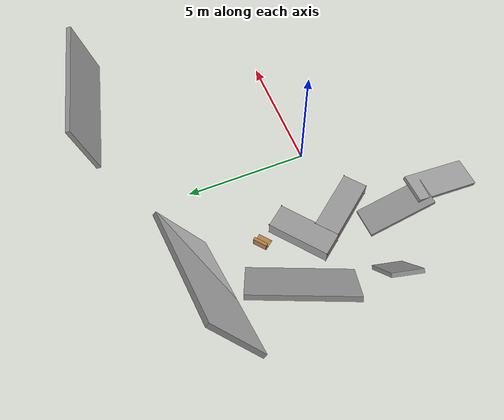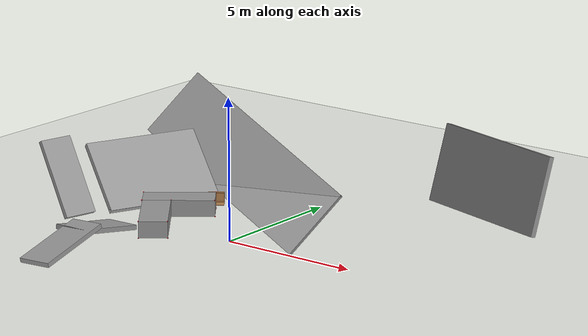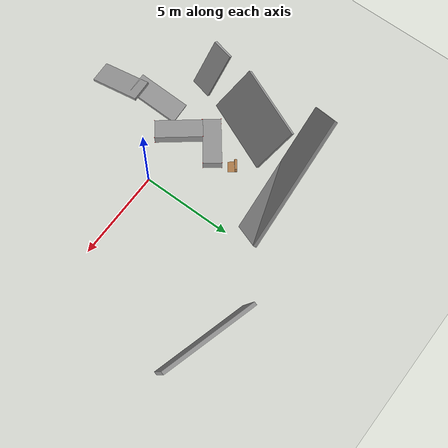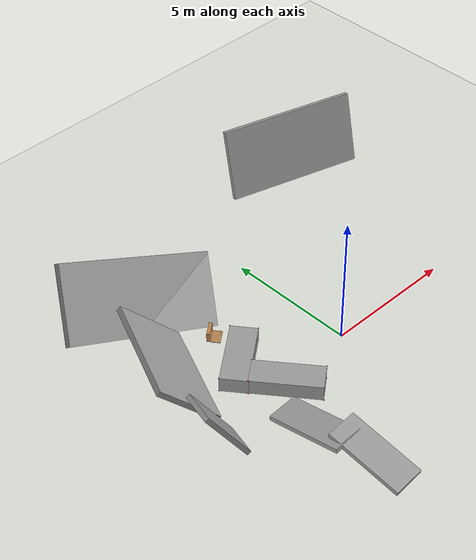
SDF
<sdf version="1.7">
 <world name="tracked_mid360_fastlio_collapse_microdeform_world">
  <model name="ground_plane">
   <static>1</static>
   <link name="link">
    <collision name="collision">
     <laser_retro>24</laser_retro>
     <geometry><plane><normal>0 0 1</normal><size>100 100</size></plane></geometry>
     <surface>
      <contact>
       <collide_bitmask>65535</collide_bitmask>
       <ode><kp>1e+06</kp><kd>10</kd><max_vel>0.05</max_vel><min_depth>0.001</min_depth></ode>
      </contact>
      <friction><ode><mu>2</mu><mu2>1.5</mu2></ode></friction>
     </surface>
     <max_contacts>20</max_contacts>
    </collision>
    <visual name="visual">
     <cast_shadows>0</cast_shadows>
     <geometry><plane><normal>0 0 1</normal><size>100 100</size></plane></geometry>
     <material>
      <script><uri>file://media/materials/scripts/gazebo.material</uri><name>Gazebo/Grey</name></script>
     </material>
    </visual>
   </link>
  </model>
  <model name="l_shape_target">
   <link name="link">
    <inertial>
     <pose>0 -2e-06 1e-06 0 -0 0</pose>
     <mass>2.9863</mass>
     <inertia>
      <ixx>3.26664</ixx>
      <ixy>-0.962303</ixy>
      <ixz>-0.00190897</ixz>
      <iyy>1.43022</iyy>
      <iyz>-0.00444381</iyz>
      <izz>4.52514</izz>
     </inertia>
    </inertial>
    <visual name="visual_0">
     <pose>-0.373105 -0.868439 -0.001713 0 -0 0</pose>
     <geometry><box><size>2.54222 1 0.58734</size></box></geometry>
     <material>
      <lighting>1</lighting>
      <script><uri>file://media/materials/scripts/gazebo.material</uri><name>Gazebo/Grey</name></script>
      <shader type="pixel"/>
     </material>
    </visual>
    <collision name="collision_0">
     <laser_retro>1</laser_retro>
     <pose>-0.373105 -0.868439 -0.001713 0 -0 0</pose>
     <geometry><box><size>2.54222 1 0.58734</size></box></geometry>
     <surface>
      <friction>
       <ode><mu>1</mu><mu2>1</mu2><fdir1>0 0 0</fdir1><slip1>0</slip1><slip2>0</slip2></ode>
       <torsional>
        <coefficient>1</coefficient>
        <patch_radius>0</patch_radius>
        <surface_radius>0</surface_radius>
        <use_patch_radius>1</use_patch_radius>
        <ode><slip>0</slip></ode>
       </torsional>
      </friction>
      <bounce><restitution_coefficient>0</restitution_coefficient><threshold>1e+06</threshold></bounce>
      <contact>
       <collide_without_contact>0</collide_without_contact>
       <collide_without_contact_bitmask>1</collide_without_contact_bitmask>
       <collide_bitmask>1</collide_bitmask>
       <ode>
        <soft_cfm>0</soft_cfm>
        <soft_erp>0.2</soft_erp>
        <kp>1e+13</kp>
        <kd>1</kd>
        <max_vel>0.01</max_vel>
        <min_depth>0</min_depth>
       </ode>
       <bullet>
        <split_impulse>1</split_impulse>
        <split_impulse_penetration_threshold>-0.01</split_impulse_penetration_threshold>
        <soft_cfm>0</soft_cfm>
        <soft_erp>0.2</soft_erp>
        <kp>1e+13</kp>
        <kd>1</kd>
       </bullet>
      </contact>
     </surface>
    </collision>
    <visual name="visual_1">
     <pose>0.373105 0.868436 0.001714 3.14159 0 -1.56298</pose>
     <geometry><box><size>2.54222 1 0.58734</size></box></geometry>
     <material>
      <lighting>1</lighting>
      <script><uri>file://media/materials/scripts/gazebo.material</uri><name>Gazebo/Grey</name></script>
      <shader type="pixel"/>
     </material>
    </visual>
    <collision name="collision_1">
     <laser_retro>1</laser_retro>
     <pose>0.373105 0.868436 0.001714 3.14159 0 -1.56298</pose>
     <geometry><box><size>2.54222 1 0.58734</size></box></geometry>
     <surface>
      <friction>
       <ode><mu>1</mu><mu2>1</mu2><fdir1>0 0 0</fdir1><slip1>0</slip1><slip2>0</slip2></ode>
       <torsional>
        <coefficient>1</coefficient>
        <patch_radius>0</patch_radius>
        <surface_radius>0</surface_radius>
        <use_patch_radius>1</use_patch_radius>
        <ode><slip>0</slip></ode>
       </torsional>
      </friction>
      <bounce><restitution_coefficient>0</restitution_coefficient><threshold>1e+06</threshold></bounce>
      <contact>
       <collide_without_contact>0</collide_without_contact>
       <collide_without_contact_bitmask>1</collide_without_contact_bitmask>
       <collide_bitmask>1</collide_bitmask>
       <ode>
        <soft_cfm>0</soft_cfm>
        <soft_erp>0.2</soft_erp>
        <kp>1e+13</kp>
        <kd>1</kd>
        <max_vel>0.01</max_vel>
        <min_depth>0</min_depth>
       </ode>
       <bullet>
        <split_impulse>1</split_impulse>
        <split_impulse_penetration_threshold>-0.01</split_impulse_penetration_threshold>
        <soft_cfm>0</soft_cfm>
        <soft_erp>0.2</soft_erp>
        <kp>1e+13</kp>
        <kd>1</kd>
       </bullet>
      </contact>
     </surface>
    </collision>
    <visual name="ground_truth_marker_v_000">
     <pose>-1.64421 -1.36844 -0.295383 0 -0 0</pose>
     <geometry><sphere><radius>0.02</radius></sphere></geometry>
     <material><ambient>1 0 0 1</ambient><diffuse>1 0 0 1</diffuse><emissive>1 0 0 1</emissive></material>
     <cast_shadows>0</cast_shadows>
    </visual>
    <visual name="ground_truth_marker_v_001">
     <pose>-1.64421 -1.36844 0.291957 0 -0 0</pose>
     <geometry><sphere><radius>0.02</radius></sphere></geometry>
     <material><ambient>1 0 0 1</ambient><diffuse>1 0 0 1</diffuse><emissive>1 0 0 1</emissive></material>
     <cast_shadows>0</cast_shadows>
    </visual>
    <visual name="ground_truth_marker_v_002">
     <pose>-1.64421 -0.368439 -0.295383 0 -0 0</pose>
     <geometry><sphere><radius>0.02</radius></sphere></geometry>
     <material><ambient>1 0 0 1</ambient><diffuse>1 0 0 1</diffuse><emissive>1 0 0 1</emissive></material>
     <cast_shadows>0</cast_shadows>
    </visual>
    <visual name="ground_truth_marker_v_003">
     <pose>-1.64421 -0.368439 0.291957 0 -0 0</pose>
     <geometry><sphere><radius>0.02</radius></sphere></geometry>
     <material><ambient>1 0 0 1</ambient><diffuse>1 0 0 1</diffuse><emissive>1 0 0 1</emissive></material>
     <cast_shadows>0</cast_shadows>
    </visual>
    <visual name="ground_truth_marker_v_004">
     <pose>0.898005 -1.36844 -0.295383 0 -0 0</pose>
     <geometry><sphere><radius>0.02</radius></sphere></geometry>
     <material><ambient>1 0 0 1</ambient><diffuse>1 0 0 1</diffuse><emissive>1 0 0 1</emissive></material>
     <cast_shadows>0</cast_shadows>
    </visual>
    <visual name="ground_truth_marker_v_005">
     <pose>0.898005 -1.36844 0.291957 0 -0 0</pose>
     <geometry><sphere><radius>0.02</radius></sphere></geometry>
     <material><ambient>1 0 0 1</ambient><diffuse>1 0 0 1</diffuse><emissive>1 0 0 1</emissive></material>
     <cast_shadows>0</cast_shadows>
    </visual>
    <visual name="ground_truth_marker_v_006">
     <pose>0.898005 -0.368439 -0.295383 0 -0 0</pose>
     <geometry><sphere><radius>0.02</radius></sphere></geometry>
     <material><ambient>1 0 0 1</ambient><diffuse>1 0 0 1</diffuse><emissive>1 0 0 1</emissive></material>
     <cast_shadows>0</cast_shadows>
    </visual>
    <visual name="ground_truth_marker_v_007">
     <pose>0.898005 -0.368439 0.291957 0 -0 0</pose>
     <geometry><sphere><radius>0.02</radius></sphere></geometry>
     <material><ambient>1 0 0 1</ambient><diffuse>1 0 0 1</diffuse><emissive>1 0 0 1</emissive></material>
     <cast_shadows>0</cast_shadows>
    </visual>
    <visual name="ground_truth_marker_v_008">
     <pose>0.863155 2.14342 0.295383 0 -0 0</pose>
     <geometry><sphere><radius>0.02</radius></sphere></geometry>
     <material><ambient>1 0 0 1</ambient><diffuse>1 0 0 1</diffuse><emissive>1 0 0 1</emissive></material>
     <cast_shadows>0</cast_shadows>
    </visual>
    <visual name="ground_truth_marker_v_009">
     <pose>0.863154 2.14342 -0.291957 0 -0 0</pose>
     <geometry><sphere><radius>0.02</radius></sphere></geometry>
     <material><ambient>1 0 0 1</ambient><diffuse>1 0 0 1</diffuse><emissive>1 0 0 1</emissive></material>
     <cast_shadows>0</cast_shadows>
    </visual>
    <visual name="ground_truth_marker_v_010">
     <pose>-0.136814 2.1356 0.295385 0 -0 0</pose>
     <geometry><sphere><radius>0.02</radius></sphere></geometry>
     <material><ambient>1 0 0 1</ambient><diffuse>1 0 0 1</diffuse><emissive>1 0 0 1</emissive></material>
     <cast_shadows>0</cast_shadows>
    </visual>
    <visual name="ground_truth_marker_v_011">
     <pose>-0.136816 2.1356 -0.291955 0 -0 0</pose>
     <geometry><sphere><radius>0.02</radius></sphere></geometry>
     <material><ambient>1 0 0 1</ambient><diffuse>1 0 0 1</diffuse><emissive>1 0 0 1</emissive></material>
     <cast_shadows>0</cast_shadows>
    </visual>
    <visual name="ground_truth_marker_v_012">
     <pose>0.883026 -0.398727 0.295383 0 -0 0</pose>
     <geometry><sphere><radius>0.02</radius></sphere></geometry>
     <material><ambient>1 0 0 1</ambient><diffuse>1 0 0 1</diffuse><emissive>1 0 0 1</emissive></material>
     <cast_shadows>0</cast_shadows>
    </visual>
    <visual name="ground_truth_marker_v_013">
     <pose>0.883024 -0.398727 -0.291957 0 -0 0</pose>
     <geometry><sphere><radius>0.02</radius></sphere></geometry>
     <material><ambient>1 0 0 1</ambient><diffuse>1 0 0 1</diffuse><emissive>1 0 0 1</emissive></material>
     <cast_shadows>0</cast_shadows>
    </visual>
    <visual name="ground_truth_marker_v_014">
     <pose>-0.116944 -0.406543 0.295385 0 -0 0</pose>
     <geometry><sphere><radius>0.02</radius></sphere></geometry>
     <material><ambient>1 0 0 1</ambient><diffuse>1 0 0 1</diffuse><emissive>1 0 0 1</emissive></material>
     <cast_shadows>0</cast_shadows>
    </visual>
    <visual name="ground_truth_marker_v_015">
     <pose>-0.116945 -0.406543 -0.291955 0 -0 0</pose>
     <geometry><sphere><radius>0.02</radius></sphere></geometry>
     <material><ambient>1 0 0 1</ambient><diffuse>1 0 0 1</diffuse><emissive>1 0 0 1</emissive></material>
     <cast_shadows>0</cast_shadows>
    </visual>
    <kinematic>1</kinematic>
   </link>
   <link name="ground_truth_v_000">
    <pose>-1.64421 -1.36844 -0.295383 0 -0 0</pose>
    <inertial>
     <mass>1e-06</mass>
     <inertia><ixx>1e-12</ixx><ixy>0</ixy><ixz>0</ixz><iyy>1e-12</iyy><iyz>0</iyz><izz>1e-12</izz></inertia>
    </inertial>
   </link>
   <link name="ground_truth_v_001">
    <pose>-1.64421 -1.36844 0.291957 0 -0 0</pose>
    <inertial>
     <mass>1e-06</mass>
     <inertia><ixx>1e-12</ixx><ixy>0</ixy><ixz>0</ixz><iyy>1e-12</iyy><iyz>0</iyz><izz>1e-12</izz></inertia>
    </inertial>
   </link>
   <link name="ground_truth_v_002">
    <pose>-1.64421 -0.368439 -0.295383 0 -0 0</pose>
    <inertial>
     <mass>1e-06</mass>
     <inertia><ixx>1e-12</ixx><ixy>0</ixy><ixz>0</ixz><iyy>1e-12</iyy><iyz>0</iyz><izz>1e-12</izz></inertia>
    </inertial>
   </link>
   <link name="ground_truth_v_003">
    <pose>-1.64421 -0.368439 0.291957 0 -0 0</pose>
    <inertial>
     <mass>1e-06</mass>
     <inertia><ixx>1e-12</ixx><ixy>0</ixy><ixz>0</ixz><iyy>1e-12</iyy><iyz>0</iyz><izz>1e-12</izz></inertia>
    </inertial>
   </link>
   <link name="ground_truth_v_004">
    <pose>0.898005 -1.36844 -0.295383 0 -0 0</pose>
    <inertial>
     <mass>1e-06</mass>
     <inertia><ixx>1e-12</ixx><ixy>0</ixy><ixz>0</ixz><iyy>1e-12</iyy><iyz>0</iyz><izz>1e-12</izz></inertia>
    </inertial>
   </link>
   <link name="ground_truth_v_005">
    <pose>0.898005 -1.36844 0.291957 0 -0 0</pose>
    <inertial>
     <mass>1e-06</mass>
     <inertia><ixx>1e-12</ixx><ixy>0</ixy><ixz>0</ixz><iyy>1e-12</iyy><iyz>0</iyz><izz>1e-12</izz></inertia>
    </inertial>
   </link>
   <link name="ground_truth_v_006">
    <pose>0.898005 -0.368439 -0.295383 0 -0 0</pose>
    <inertial>
     <mass>1e-06</mass>
     <inertia><ixx>1e-12</ixx><ixy>0</ixy><ixz>0</ixz><iyy>1e-12</iyy><iyz>0</iyz><izz>1e-12</izz></inertia>
    </inertial>
   </link>
   <link name="ground_truth_v_007">
    <pose>0.898005 -0.368439 0.291957 0 -0 0</pose>
    <inertial>
     <mass>1e-06</mass>
     <inertia><ixx>1e-12</ixx><ixy>0</ixy><ixz>0</ixz><iyy>1e-12</iyy><iyz>0</iyz><izz>1e-12</izz></inertia>
    </inertial>
   </link>
   <link name="ground_truth_v_008">
    <pose>0.863155 2.14342 0.295383 0 -0 0</pose>
    <inertial>
     <mass>1e-06</mass>
     <inertia><ixx>1e-12</ixx><ixy>0</ixy><ixz>0</ixz><iyy>1e-12</iyy><iyz>0</iyz><izz>1e-12</izz></inertia>
    </inertial>
   </link>
   <link name="ground_truth_v_009">
    <pose>0.863154 2.14342 -0.291957 0 -0 0</pose>
    <inertial>
     <mass>1e-06</mass>
     <inertia><ixx>1e-12</ixx><ixy>0</ixy><ixz>0</ixz><iyy>1e-12</iyy><iyz>0</iyz><izz>1e-12</izz></inertia>
    </inertial>
   </link>
   <link name="ground_truth_v_010">
    <pose>-0.136814 2.1356 0.295385 0 -0 0</pose>
    <inertial>
     <mass>1e-06</mass>
     <inertia><ixx>1e-12</ixx><ixy>0</ixy><ixz>0</ixz><iyy>1e-12</iyy><iyz>0</iyz><izz>1e-12</izz></inertia>
    </inertial>
   </link>
   <link name="ground_truth_v_011">
    <pose>-0.136816 2.1356 -0.291955 0 -0 0</pose>
    <inertial>
     <mass>1e-06</mass>
     <inertia><ixx>1e-12</ixx><ixy>0</ixy><ixz>0</ixz><iyy>1e-12</iyy><iyz>0</iyz><izz>1e-12</izz></inertia>
    </inertial>
   </link>
   <link name="ground_truth_v_012">
    <pose>0.883026 -0.398727 0.295383 0 -0 0</pose>
    <inertial>
     <mass>1e-06</mass>
     <inertia><ixx>1e-12</ixx><ixy>0</ixy><ixz>0</ixz><iyy>1e-12</iyy><iyz>0</iyz><izz>1e-12</izz></inertia>
    </inertial>
   </link>
   <link name="ground_truth_v_013">
    <pose>0.883024 -0.398727 -0.291957 0 -0 0</pose>
    <inertial>
     <mass>1e-06</mass>
     <inertia><ixx>1e-12</ixx><ixy>0</ixy><ixz>0</ixz><iyy>1e-12</iyy><iyz>0</iyz><izz>1e-12</izz></inertia>
    </inertial>
   </link>
   <link name="ground_truth_v_014">
    <pose>-0.116944 -0.406543 0.295385 0 -0 0</pose>
    <inertial>
     <mass>1e-06</mass>
     <inertia><ixx>1e-12</ixx><ixy>0</ixy><ixz>0</ixz><iyy>1e-12</iyy><iyz>0</iyz><izz>1e-12</izz></inertia>
    </inertial>
   </link>
   <link name="ground_truth_v_015">
    <pose>-0.116945 -0.406543 -0.291955 0 -0 0</pose>
    <inertial>
     <mass>1e-06</mass>
     <inertia><ixx>1e-12</ixx><ixy>0</ixy><ixz>0</ixz><iyy>1e-12</iyy><iyz>0</iyz><izz>1e-12</izz></inertia>
    </inertial>
   </link>
   <joint name="ground_truth_v_000_fixed_joint" type="fixed">
    <parent>link</parent>
    <child>ground_truth_v_000</child>
   </joint>
   <joint name="ground_truth_v_001_fixed_joint" type="fixed">
    <parent>link</parent>
    <child>ground_truth_v_001</child>
   </joint>
   <joint name="ground_truth_v_002_fixed_joint" type="fixed">
    <parent>link</parent>
    <child>ground_truth_v_002</child>
   </joint>
   <joint name="ground_truth_v_003_fixed_joint" type="fixed">
    <parent>link</parent>
    <child>ground_truth_v_003</child>
   </joint>
   <joint name="ground_truth_v_004_fixed_joint" type="fixed">
    <parent>link</parent>
    <child>ground_truth_v_004</child>
   </joint>
   <joint name="ground_truth_v_005_fixed_joint" type="fixed">
    <parent>link</parent>
    <child>ground_truth_v_005</child>
   </joint>
   <joint name="ground_truth_v_006_fixed_joint" type="fixed">
    <parent>link</parent>
    <child>ground_truth_v_006</child>
   </joint>
   <joint name="ground_truth_v_007_fixed_joint" type="fixed">
    <parent>link</parent>
    <child>ground_truth_v_007</child>
   </joint>
   <joint name="ground_truth_v_008_fixed_joint" type="fixed">
    <parent>link</parent>
    <child>ground_truth_v_008</child>
   </joint>
   <joint name="ground_truth_v_009_fixed_joint" type="fixed">
    <parent>link</parent>
    <child>ground_truth_v_009</child>
   </joint>
   <joint name="ground_truth_v_010_fixed_joint" type="fixed">
    <parent>link</parent>
    <child>ground_truth_v_010</child>
   </joint>
   <joint name="ground_truth_v_011_fixed_joint" type="fixed">
    <parent>link</parent>
    <child>ground_truth_v_011</child>
   </joint>
   <joint name="ground_truth_v_012_fixed_joint" type="fixed">
    <parent>link</parent>
    <child>ground_truth_v_012</child>
   </joint>
   <joint name="ground_truth_v_013_fixed_joint" type="fixed">
    <parent>link</parent>
    <child>ground_truth_v_013</child>
   </joint>
   <joint name="ground_truth_v_014_fixed_joint" type="fixed">
    <parent>link</parent>
    <child>ground_truth_v_014</child>
   </joint>
   <joint name="ground_truth_v_015_fixed_joint" type="fixed">
    <parent>link</parent>
    <child>ground_truth_v_015</child>
   </joint>
   <static>0</static>
   <pose>-3.27675 0.570427 0.295379 0 0 -2.4823</pose>
  </model>
  <model name="lzg_grey_wall">
   <link name="link">
    <pose>7.32515 3.97328 2.49003 0 -0 0</pose>
    <inertial>
     <inertia><ixx>0.477607</ixx><ixy>0</ixy><ixz>0</ixz><iyy>2.2787</iyy><iyz>0</iyz><izz>1.80594</izz></inertia>
     <mass>0.727321</mass>
    </inertial>
    <visual name="visual">
     <cast_shadows>0</cast_shadows>
     <geometry><box><size>5.45491 0.2 2.8</size></box></geometry>
     <material>
      <script>
       <uri>model://grey_wall/materials/scripts</uri>
       <uri>model://grey_wall/materials/textures</uri>
       <name>vrc/grey_wall</name>
      </script>
      <shader type="pixel"/>
     </material>
    </visual>
    <collision name="collision">
     <laser_retro>12</laser_retro>
     <geometry><box><size>5.45491 0.2 2.8</size></box></geometry>
     <surface>
      <friction>
       <ode><mu>1</mu><mu2>1</mu2><fdir1>0 0 0</fdir1><slip1>0</slip1><slip2>0</slip2></ode>
       <torsional>
        <coefficient>1</coefficient>
        <patch_radius>0</patch_radius>
        <surface_radius>0</surface_radius>
        <use_patch_radius>1</use_patch_radius>
        <ode><slip>0</slip></ode>
       </torsional>
      </friction>
      <bounce><restitution_coefficient>0</restitution_coefficient><threshold>1e+06</threshold></bounce>
      <contact>
       <collide_without_contact>0</collide_without_contact>
       <collide_without_contact_bitmask>1</collide_without_contact_bitmask>
       <collide_bitmask>1</collide_bitmask>
       <ode>
        <soft_cfm>0</soft_cfm>
        <soft_erp>0.2</soft_erp>
        <kp>1e+13</kp>
        <kd>1</kd>
        <max_vel>0.01</max_vel>
        <min_depth>0</min_depth>
       </ode>
       <bullet>
        <split_impulse>1</split_impulse>
        <split_impulse_penetration_threshold>-0.01</split_impulse_penetration_threshold>
        <soft_cfm>0</soft_cfm>
        <soft_erp>0.2</soft_erp>
        <kp>1e+13</kp>
        <kd>1</kd>
       </bullet>
      </contact>
     </surface>
    </collision>
   </link>
   <static>1</static>
   <allow_auto_disable>0</allow_auto_disable>
   <pose>-2.92114 5.32308 0.059142 -0.275506 -0 -0.272159</pose>
  </model>
  <model name="wooden_case_metal_peg">
   <static>1</static>
   <frame name="wooden_case::__model__" attached_to="wooden_case::base">
    <pose relative_to="__model__">0 0 0 0 -0 0</pose>
   </frame>
   <link name="wooden_case::base">
    <pose relative_to="wooden_case::__model__">0 0 0.024 0 -0 0</pose>
    <inertial>
     <pose>-0.022184 0 0.171592 0 -0 0</pose>
     <mass>3.96264</mass>
     <inertia>
      <ixx>0.213536</ixx>
      <ixy>0</ixy>
      <ixz>0.000779377</ixz>
      <iyy>0.0708943</iyy>
      <iyz>0</iyz>
      <izz>0.154604</izz>
     </inertia>
    </inertial>
    <collision name="collision_back">
     <laser_retro>13</laser_retro>
     <pose>-0.053975 0 0.1778 0 -0 0</pose>
     <geometry><box><size>0.01905 0.5461 0.3175</size></box></geometry>
     <surface>
      <contact>
       <poissons_ratio>0.347</poissons_ratio>
       <elastic_modulus>8.8e+09</elastic_modulus>
       <ode><kp>100000</kp><kd>100</kd><max_vel>100</max_vel><min_depth>0.001</min_depth></ode>
      </contact>
      <friction>
       <torsional>
        <coefficient>1</coefficient>
        <use_patch_radius>0</use_patch_radius>
        <surface_radius>0.01</surface_radius>
       </torsional>
      </friction>
     </surface>
    </collision>
    <visual name="visual_back">
     <pose>-0.053975 0 0.1778 0 -0 0</pose>
     <geometry><box><size>0.01905 0.5461 0.3175</size></box></geometry>
     <material>
      <script><uri>file://media/materials/scripts/gazebo.material</uri><name>Gazebo/Wood</name></script>
     </material>
    </visual>
    <collision name="collision_bottom">
     <laser_retro>13</laser_retro>
     <pose>0 0 0.009525 0 -0 0</pose>
     <geometry><box><size>0.127 0.5842 0.01905</size></box></geometry>
     <surface>
      <contact>
       <poissons_ratio>0.347</poissons_ratio>
       <elastic_modulus>8.8e+09</elastic_modulus>
       <ode><kp>100000</kp><kd>100</kd><max_vel>100</max_vel><min_depth>0.001</min_depth></ode>
      </contact>
      <friction>
       <torsional>
        <coefficient>1</coefficient>
        <use_patch_radius>0</use_patch_radius>
        <surface_radius>0.01</surface_radius>
       </torsional>
      </friction>
     </surface>
    </collision>
    <visual name="visual_bottom">
     <pose>0 0 0.009525 0 -0 0</pose>
     <geometry><box><size>0.127 0.5842 0.01905</size></box></geometry>
     <material>
      <script><uri>file://media/materials/scripts/gazebo.material</uri><name>Gazebo/Wood</name></script>
     </material>
    </visual>
    <collision name="collision_top">
     <laser_retro>13</laser_retro>
     <pose>0 0 0.346075 0 -0 0</pose>
     <geometry><box><size>0.127 0.5842 0.01905</size></box></geometry>
     <surface>
      <contact>
       <poissons_ratio>0.347</poissons_ratio>
       <elastic_modulus>8.8e+09</elastic_modulus>
       <ode><kp>100000</kp><kd>100</kd><max_vel>100</max_vel><min_depth>0.001</min_depth></ode>
      </contact>
      <friction>
       <torsional>
        <coefficient>1</coefficient>
        <use_patch_radius>0</use_patch_radius>
        <surface_radius>0.01</surface_radius>
       </torsional>
      </friction>
     </surface>
    </collision>
    <visual name="visual_top">
     <pose>0 0 0.346075 0 -0 0</pose>
     <geometry><box><size>0.127 0.5842 0.01905</size></box></geometry>
     <material>
      <script><uri>file://media/materials/scripts/gazebo.material</uri><name>Gazebo/Wood</name></script>
     </material>
    </visual>
    <collision name="collision_left">
     <laser_retro>13</laser_retro>
     <pose>0 -0.282575 0.1778 0 -0 0</pose>
     <geometry><box><size>0.127 0.01905 0.3175</size></box></geometry>
     <surface>
      <contact>
       <poissons_ratio>0.347</poissons_ratio>
       <elastic_modulus>8.8e+09</elastic_modulus>
       <ode><kp>100000</kp><kd>100</kd><max_vel>100</max_vel><min_depth>0.001</min_depth></ode>
      </contact>
      <friction>
       <torsional>
        <coefficient>1</coefficient>
        <use_patch_radius>0</use_patch_radius>
        <surface_radius>0.01</surface_radius>
       </torsional>
      </friction>
     </surface>
    </collision>
    <visual name="visual_left">
     <pose>0 -0.282575 0.1778 0 -0 0</pose>
     <geometry><box><size>0.127 0.01905 0.3175</size></box></geometry>
     <material>
      <script><uri>file://media/materials/scripts/gazebo.material</uri><name>Gazebo/Wood</name></script>
     </material>
    </visual>
    <collision name="collision_right">
     <laser_retro>13</laser_retro>
     <pose>0 0.282575 0.1778 0 -0 0</pose>
     <geometry><box><size>0.127 0.01905 0.3175</size></box></geometry>
     <surface>
      <contact>
       <poissons_ratio>0.347</poissons_ratio>
       <elastic_modulus>8.8e+09</elastic_modulus>
       <ode><kp>100000</kp><kd>100</kd><max_vel>100</max_vel><min_depth>0.001</min_depth></ode>
      </contact>
      <friction>
       <torsional>
        <coefficient>1</coefficient>
        <use_patch_radius>0</use_patch_radius>
        <surface_radius>0.01</surface_radius>
       </torsional>
      </friction>
     </surface>
    </collision>
    <visual name="visual_right">
     <pose>0 0.282575 0.1778 0 -0 0</pose>
     <geometry><box><size>0.127 0.01905 0.3175</size></box></geometry>
     <material>
      <script><uri>file://media/materials/scripts/gazebo.material</uri><name>Gazebo/Wood</name></script>
     </material>
    </visual>
    <collision name="collision_block_left">
     <laser_retro>13</laser_retro>
     <pose>0.0095 -0.2151 -0.012 0 -0 0</pose>
     <geometry><box><size>0.108 0.05 0.024</size></box></geometry>
     <surface>
      <contact>
       <poissons_ratio>0.347</poissons_ratio>
       <elastic_modulus>8.8e+09</elastic_modulus>
       <ode><kp>100000</kp><kd>100</kd><max_vel>100</max_vel><min_depth>0.001</min_depth></ode>
      </contact>
      <friction>
       <torsional>
        <coefficient>1</coefficient>
        <use_patch_radius>0</use_patch_radius>
        <surface_radius>0.01</surface_radius>
       </torsional>
      </friction>
     </surface>
    </collision>
    <visual name="visual_block_left">
     <pose>0.0095 -0.2151 -0.012 0 -0 0</pose>
     <geometry><box><size>0.108 0.05 0.024</size></box></geometry>
     <material>
      <script><uri>file://media/materials/scripts/gazebo.material</uri><name>Gazebo/Wood</name></script>
     </material>
    </visual>
    <collision name="collision_block_right">
     <laser_retro>13</laser_retro>
     <pose>0.0095 0.2151 -0.012 0 -0 0</pose>
     <geometry><box><size>0.108 0.05 0.024</size></box></geometry>
     <surface>
      <contact>
       <poissons_ratio>0.347</poissons_ratio>
       <elastic_modulus>8.8e+09</elastic_modulus>
       <ode><kp>100000</kp><kd>100</kd><max_vel>100</max_vel><min_depth>0.001</min_depth></ode>
      </contact>
      <friction>
       <torsional>
        <coefficient>1</coefficient>
        <use_patch_radius>0</use_patch_radius>
        <surface_radius>0.01</surface_radius>
       </torsional>
      </friction>
     </surface>
    </collision>
    <visual name="visual_block_right">
     <pose>0.0095 0.2151 -0.012 0 -0 0</pose>
     <geometry><box><size>0.108 0.05 0.024</size></box></geometry>
     <material>
      <script><uri>file://media/materials/scripts/gazebo.material</uri><name>Gazebo/Wood</name></script>
     </material>
    </visual>
   </link>
   <link name="wooden_case::lid">
    <pose relative_to="wooden_case::__model__">0.243775 0 0.009525 0 -0 0</pose>
    <inertial>
     <mass>1.97874</mass>
     <inertia>
      <ixx>0.0563367</ixx>
      <ixy>0</ixy>
      <ixz>0</ixz>
      <iyy>0.020911</iyy>
      <iyz>0</iyz>
      <izz>0.0771281</izz>
     </inertia>
    </inertial>
    <collision name="collision">
     <laser_retro>13</laser_retro>
     <geometry><box><size>0.3556 0.5842 0.01905</size></box></geometry>
     <surface>
      <contact>
       <poissons_ratio>0.347</poissons_ratio>
       <elastic_modulus>8.8e+09</elastic_modulus>
       <ode><kp>100000</kp><kd>100</kd><max_vel>100</max_vel><min_depth>0.001</min_depth></ode>
      </contact>
      <friction>
       <torsional>
        <coefficient>1</coefficient>
        <use_patch_radius>0</use_patch_radius>
        <surface_radius>0.01</surface_radius>
       </torsional>
      </friction>
     </surface>
    </collision>
    <visual name="visual">
     <geometry><box><size>0.3556 0.5842 0.01905</size></box></geometry>
     <material>
      <script><uri>file://media/materials/scripts/gazebo.material</uri><name>Gazebo/Wood</name></script>
     </material>
    </visual>
    <visual name="tee_nut_1">
     <pose>0.122 -0.216 0 0 -0 0</pose>
     <geometry><cylinder><radius>0.00635</radius><length>0.0192405</length></cylinder></geometry>
     <material>
      <script><uri>file://media/materials/scripts/gazebo.material</uri><name>Gazebo/Grey</name></script>
     </material>
    </visual>
    <visual name="tee_nut_2">
     <pose>0.122 -0.088 0 0 -0 0</pose>
     <geometry><cylinder><radius>0.00635</radius><length>0.0192405</length></cylinder></geometry>
     <material>
      <script><uri>file://media/materials/scripts/gazebo.material</uri><name>Gazebo/Grey</name></script>
     </material>
    </visual>
    <visual name="tee_nut_3">
     <pose>0.122 0.088 0 0 -0 0</pose>
     <geometry><cylinder><radius>0.00635</radius><length>0.0192405</length></cylinder></geometry>
     <material>
      <script><uri>file://media/materials/scripts/gazebo.material</uri><name>Gazebo/Grey</name></script>
     </material>
    </visual>
    <visual name="tee_nut_4">
     <pose>0.122 0.216 0 0 -0 0</pose>
     <geometry><cylinder><radius>0.00635</radius><length>0.0192405</length></cylinder></geometry>
     <material>
      <script><uri>file://media/materials/scripts/gazebo.material</uri><name>Gazebo/Grey</name></script>
     </material>
    </visual>
   </link>
   <joint name="wooden_case::lid_hinge" type="revolute">
    <pose>-0.1778 0 0.01905 0 -0 0</pose>
    <parent>wooden_case::base</parent>
    <child>wooden_case::lid</child>
    <axis>
     <xyz>0 1 0</xyz>
     <limit><upper>0.523599</upper><lower>-1.5708</lower></limit>
     <dynamics><spring_reference>0</spring_reference><spring_stiffness>0</spring_stiffness></dynamics>
    </axis>
   </joint>
   <frame name="peg::__model__" attached_to="peg::link">
    <pose relative_to="__model__">0.365774 0.216 0.01905 0 -0 0</pose>
   </frame>
   <link name="peg::link">
    <pose relative_to="peg::__model__">0 0 0.031 0 -0 0</pose>
    <inertial>
     <mass>0.0121</mass>
     <inertia>
      <ixx>3.90898e-06</ixx>
      <ixy>0</ixy>
      <ixz>0</ixz>
      <iyy>3.90898e-06</iyy>
      <iyz>0</iyz>
      <izz>6.58845e-08</izz>
     </inertia>
    </inertial>
    <collision name="collision">
     <laser_retro>13</laser_retro>
     <geometry><cylinder><radius>0.0033</radius><length>0.062</length></cylinder></geometry>
     <surface>
      <contact>
       <poissons_ratio>0.305</poissons_ratio>
       <elastic_modulus>2e+11</elastic_modulus>
       <ode><kp>100000</kp><kd>100</kd><max_vel>100</max_vel><min_depth>0.001</min_depth></ode>
      </contact>
      <friction>
       <torsional>
        <coefficient>1</coefficient>
        <use_patch_radius>0</use_patch_radius>
        <surface_radius>0.01</surface_radius>
       </torsional>
      </friction>
     </surface>
    </collision>
    <visual name="visual">
     <geometry><cylinder><radius>0.0033</radius><length>0.062</length></cylinder></geometry>
     <material>
      <script><uri>file://media/materials/scripts/gazebo.material</uri><name>Gazebo/Grey</name></script>
     </material>
    </visual>
   </link>
   <joint name="case_peg" type="revolute">
    <child>peg::link</child>
    <parent>wooden_case::lid</parent>
    <axis>
     <xyz>0 0 1</xyz>
     <limit><upper>0</upper><lower>0</lower></limit>
     <dynamics><spring_reference>0</spring_reference><spring_stiffness>0</spring_stiffness></dynamics>
    </axis>
   </joint>
   <pose>-3.2677 3.21042 -0.001063 1.1e-05 -0.000531 -0.909382</pose>
  </model>
  <model name="lzg_bianwood_clone">
   <link name="link_0">
    <inertial>
     <mass>0.567947</mass>
     <inertia>
      <ixx>0.387852</ixx>
      <ixy>0</ixy>
      <ixz>0</ixz>
      <iyy>0.454669</iyy>
      <iyz>0</iyz>
      <izz>0.0694091</izz>
     </inertia>
    </inertial>
    <pose>0 -3e-06 -0 0.737123 -0 0</pose>
    <visual name="visual">
     <geometry><box><size>1.19964 0.165479 2.85787</size></box></geometry>
     <material>
      <lighting>1</lighting>
      <script><uri>file://media/materials/scripts/gazebo.material</uri><name>Gazebo/Grey</name></script>
      <shader type="pixel"/>
     </material>
    </visual>
    <collision name="collision">
     <laser_retro>19</laser_retro>
     <geometry><box><size>1.19964 0.165479 2.85787</size></box></geometry>
     <surface>
      <friction>
       <ode><mu>1</mu><mu2>1</mu2><fdir1>0 0 0</fdir1><slip1>0</slip1><slip2>0</slip2></ode>
       <torsional>
        <coefficient>1</coefficient>
        <patch_radius>0</patch_radius>
        <surface_radius>0</surface_radius>
        <use_patch_radius>1</use_patch_radius>
        <ode><slip>0</slip></ode>
       </torsional>
      </friction>
      <bounce><restitution_coefficient>0</restitution_coefficient><threshold>1e+06</threshold></bounce>
      <contact>
       <collide_without_contact>0</collide_without_contact>
       <collide_without_contact_bitmask>1</collide_without_contact_bitmask>
       <collide_bitmask>1</collide_bitmask>
       <ode>
        <soft_cfm>0</soft_cfm>
        <soft_erp>0.2</soft_erp>
        <kp>1e+13</kp>
        <kd>1</kd>
        <max_vel>0.01</max_vel>
        <min_depth>0</min_depth>
       </ode>
       <bullet>
        <split_impulse>1</split_impulse>
        <split_impulse_penetration_threshold>-0.01</split_impulse_penetration_threshold>
        <soft_cfm>0</soft_cfm>
        <soft_erp>0.2</soft_erp>
        <kp>1e+13</kp>
        <kd>1</kd>
       </bullet>
      </contact>
     </surface>
    </collision>
   </link>
   <static>1</static>
   <pose>-3.87066 -2.3799 0.35166 0.643287 -2e-06 0.051627</pose>
  </model>
  <model name="lzg_bianwood_clone_0">
   <link name="link_0">
    <inertial>
     <mass>0.567947</mass>
     <inertia>
      <ixx>0.387852</ixx>
      <ixy>0</ixy>
      <ixz>0</ixz>
      <iyy>0.454669</iyy>
      <iyz>0</iyz>
      <izz>0.0694091</izz>
     </inertia>
    </inertial>
    <pose>0 -3e-06 -0 0.737123 -0 0</pose>
    <visual name="visual">
     <geometry><box><size>1.19964 0.165479 2.85787</size></box></geometry>
     <material>
      <lighting>1</lighting>
      <script><uri>file://media/materials/scripts/gazebo.material</uri><name>Gazebo/Grey</name></script>
      <shader type="pixel"/>
     </material>
    </visual>
    <collision name="collision">
     <laser_retro>20</laser_retro>
     <geometry><box><size>1.19964 0.165479 2.85787</size></box></geometry>
     <surface>
      <friction>
       <ode><mu>1</mu><mu2>1</mu2><fdir1>0 0 0</fdir1><slip1>0</slip1><slip2>0</slip2></ode>
       <torsional>
        <coefficient>1</coefficient>
        <patch_radius>0</patch_radius>
        <surface_radius>0</surface_radius>
        <use_patch_radius>1</use_patch_radius>
        <ode><slip>0</slip></ode>
       </torsional>
      </friction>
      <bounce><restitution_coefficient>0</restitution_coefficient><threshold>1e+06</threshold></bounce>
      <contact>
       <collide_without_contact>0</collide_without_contact>
       <collide_without_contact_bitmask>1</collide_without_contact_bitmask>
       <collide_bitmask>1</collide_bitmask>
       <ode>
        <soft_cfm>0</soft_cfm>
        <soft_erp>0.2</soft_erp>
        <kp>1e+13</kp>
        <kd>1</kd>
        <max_vel>0.01</max_vel>
        <min_depth>0</min_depth>
       </ode>
       <bullet>
        <split_impulse>1</split_impulse>
        <split_impulse_penetration_threshold>-0.01</split_impulse_penetration_threshold>
        <soft_cfm>0</soft_cfm>
        <soft_erp>0.2</soft_erp>
        <kp>1e+13</kp>
        <kd>1</kd>
       </bullet>
      </contact>
     </surface>
    </collision>
   </link>
   <static>1</static>
   <pose>-3.46197 -4.58181 0.416322 -2.08156 -0.025235 0.056928</pose>
  </model>
  <model name="lzg_bianwood_clone_1">
   <link name="link_0">
    <inertial>
     <mass>0.567947</mass>
     <inertia>
      <ixx>0.387852</ixx>
      <ixy>0</ixy>
      <ixz>0</ixz>
      <iyy>0.454669</iyy>
      <iyz>0</iyz>
      <izz>0.0694091</izz>
     </inertia>
    </inertial>
    <pose>0 -3e-06 -0 0.737123 -0 0</pose>
    <visual name="visual">
     <geometry><box><size>1.19964 0.165479 2.85787</size></box></geometry>
     <material>
      <lighting>1</lighting>
      <script><uri>file://media/materials/scripts/gazebo.material</uri><name>Gazebo/Grey</name></script>
      <shader type="pixel"/>
     </material>
    </visual>
    <collision name="collision">
     <laser_retro>21</laser_retro>
     <geometry><box><size>1.19964 0.165479 2.85787</size></box></geometry>
     <surface>
      <friction>
       <ode><mu>1</mu><mu2>1</mu2><fdir1>0 0 0</fdir1><slip1>0</slip1><slip2>0</slip2></ode>
       <torsional>
        <coefficient>1</coefficient>
        <patch_radius>0</patch_radius>
        <surface_radius>0</surface_radius>
        <use_patch_radius>1</use_patch_radius>
        <ode><slip>0</slip></ode>
       </torsional>
      </friction>
      <bounce><restitution_coefficient>0</restitution_coefficient><threshold>1e+06</threshold></bounce>
      <contact>
       <collide_without_contact>0</collide_without_contact>
       <collide_without_contact_bitmask>1</collide_without_contact_bitmask>
       <collide_bitmask>1</collide_bitmask>
       <ode>
        <soft_cfm>0</soft_cfm>
        <soft_erp>0.2</soft_erp>
        <kp>1e+13</kp>
        <kd>1</kd>
        <max_vel>0.01</max_vel>
        <min_depth>0</min_depth>
       </ode>
       <bullet>
        <split_impulse>1</split_impulse>
        <split_impulse_penetration_threshold>-0.01</split_impulse_penetration_threshold>
        <soft_cfm>0</soft_cfm>
        <soft_erp>0.2</soft_erp>
        <kp>1e+13</kp>
        <kd>1</kd>
       </bullet>
      </contact>
     </surface>
    </collision>
   </link>
   <static>1</static>
   <pose>-6.6353 -0.838277 1.25938 -0.184075 -2e-06 -1.79958</pose>
  </model>
  <model name="grey_wall">
   <static>1</static>
   <link name="link">
    <pose>0 0 1.4 0 -0 0</pose>
    <collision name="collision">
     <laser_retro>22</laser_retro>
     <geometry><box><size>7.5 0.2 2.8</size></box></geometry>
    </collision>
    <visual name="visual">
     <cast_shadows>0</cast_shadows>
     <geometry><box><size>7.5 0.2 2.8</size></box></geometry>
     <material>
      <script>
       <uri>model://grey_wall/materials/scripts</uri>
       <uri>model://grey_wall/materials/textures</uri>
       <name>vrc/grey_wall</name>
      </script>
     </material>
    </visual>
   </link>
   <pose>-4.6569 4.97526 -0.27997 -0.625682 0.4848 -0</pose>
  </model>
  <model name="grey_wall_0">
   <link name="link">
    <pose>-0.840653 0.34646 1.74269 -0.79872 0 0</pose>
    <inertial>
     <inertia><ixx>0</ixx><ixy>0</ixy><ixz>0</ixz><iyy>0</iyy><iyz>0</iyz><izz>0</izz></inertia>
     <mass>0</mass>
    </inertial>
    <visual name="visual">
     <cast_shadows>0</cast_shadows>
     <geometry><box><size>4.23024 0.2 2.8</size></box></geometry>
     <material>
      <script>
       <uri>model://grey_wall/materials/scripts</uri>
       <uri>model://grey_wall/materials/textures</uri>
       <name>vrc/grey_wall</name>
      </script>
      <shader type="pixel"/>
     </material>
    </visual>
    <collision name="collision">
     <laser_retro>23</laser_retro>
     <geometry><box><size>4.23024 0.2 2.8</size></box></geometry>
     <surface>
      <friction>
       <ode><mu>1</mu><mu2>1</mu2><fdir1>0 0 0</fdir1><slip1>0</slip1><slip2>0</slip2></ode>
       <torsional>
        <coefficient>1</coefficient>
        <patch_radius>0</patch_radius>
        <surface_radius>0</surface_radius>
        <use_patch_radius>1</use_patch_radius>
        <ode><slip>0</slip></ode>
       </torsional>
      </friction>
      <bounce><restitution_coefficient>0</restitution_coefficient><threshold>1e+06</threshold></bounce>
      <contact>
       <collide_without_contact>0</collide_without_contact>
       <collide_without_contact_bitmask>1</collide_without_contact_bitmask>
       <collide_bitmask>1</collide_bitmask>
       <ode>
        <soft_cfm>0</soft_cfm>
        <soft_erp>0.2</soft_erp>
        <kp>1e+13</kp>
        <kd>1</kd>
        <max_vel>0.01</max_vel>
        <min_depth>0</min_depth>
       </ode>
       <bullet>
        <split_impulse>1</split_impulse>
        <split_impulse_penetration_threshold>-0.01</split_impulse_penetration_threshold>
        <soft_cfm>0</soft_cfm>
        <soft_erp>0.2</soft_erp>
        <kp>1e+13</kp>
        <kd>1</kd>
       </bullet>
      </contact>
     </surface>
    </collision>
   </link>
   <static>1</static>
   <pose>-5.06341 3.22124 -0.855556 0 -0 1.16722</pose>
  </model>
 </world>
</sdf>
